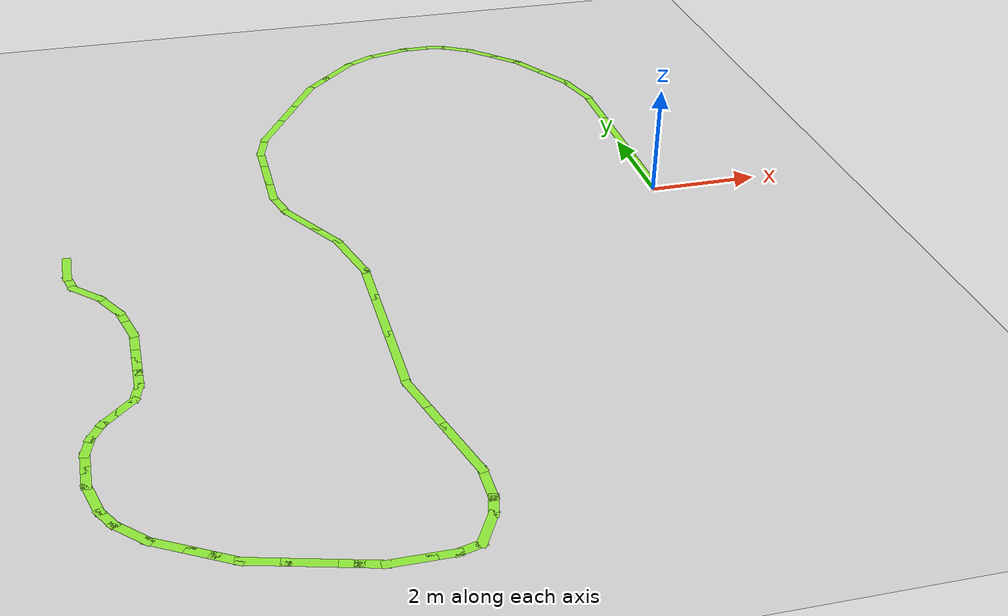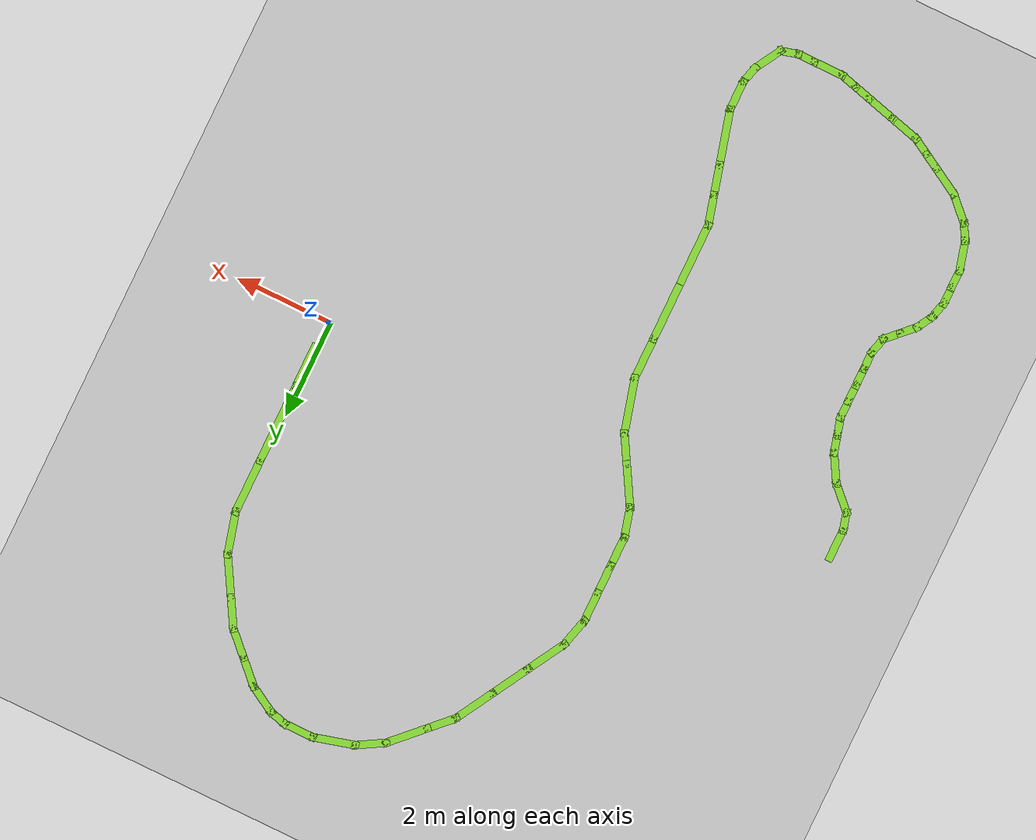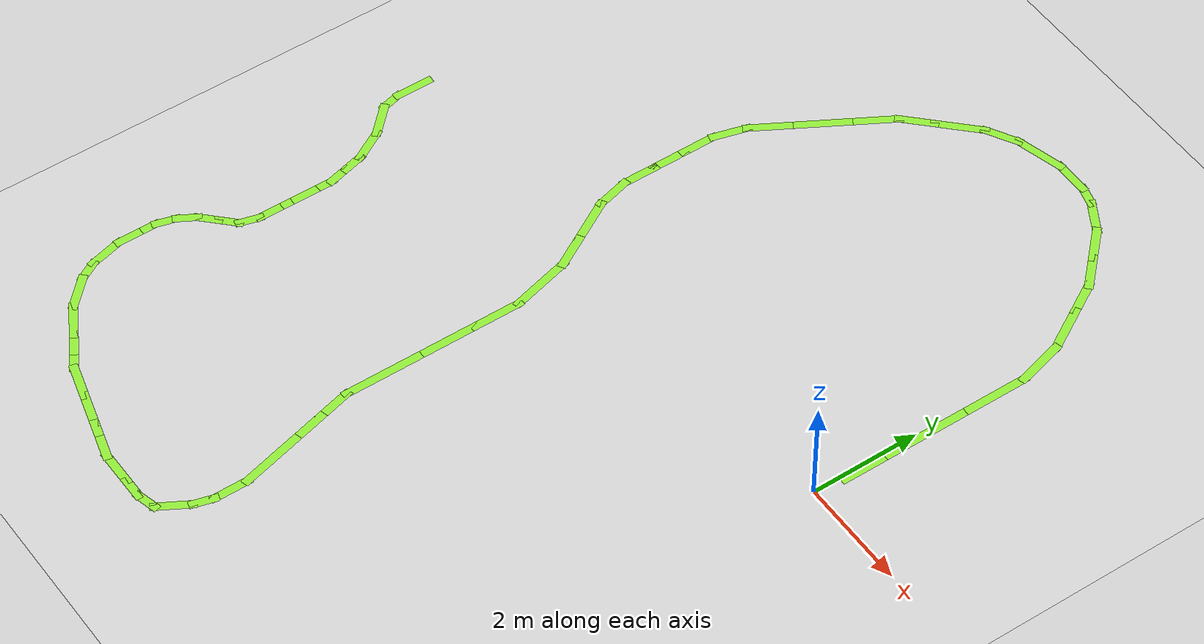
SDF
<sdf version="1.6">
 <world name="default">
  <model name="ground_plane">
   <static>1</static>
   <link name="link">
    <collision name="collision">
     <geometry><plane><normal>0 0 1</normal><size>100 100</size></plane></geometry>
     <surface><friction><ode><mu>100</mu><mu2>50</mu2></ode></friction></surface>
    </collision>
    <visual name="visual">
     <cast_shadows>0</cast_shadows>
     <geometry><plane><normal>0 0 1</normal><size>100 100</size></plane></geometry>
     <material>
      <script><uri>file://media/materials/scripts/gazebo.material</uri><name>Gazebo/Grey</name></script>
     </material>
    </visual>
   </link>
  </model>
  <model name="path_diamond">
   <pose>-5.33739 -0.627915 0 0 -0 0</pose>
   <link name="Wall_11">
    <collision name="Wall_11_Collision"><geometry><box><size>0.75 0.15 0</size></box></geometry></collision>
    <visual name="Wall_11_Visual">
     <geometry><box><size>0.75 0.15 0</size></box></geometry>
     <material>
      <script><uri>file://media/materials/scripts/gazebo.material</uri><name>Gazebo/Grey</name></script>
      <ambient>0.541176 0.886275 0.203922 1</ambient>
     </material>
     <meta><layer>0</layer></meta>
    </visual>
    <pose>4.61819 6.55155 0 0 -0 2.0944</pose>
   </link>
   <link name="Wall_12">
    <collision name="Wall_12_Collision"><geometry><box><size>0.75 0.15 0</size></box></geometry></collision>
    <visual name="Wall_12_Visual">
     <geometry><box><size>0.75 0.15 0</size></box></geometry>
     <material>
      <script><uri>file://media/materials/scripts/gazebo.material</uri><name>Gazebo/Grey</name></script>
      <ambient>0.541176 0.886275 0.203922 1</ambient>
     </material>
     <meta><layer>0</layer></meta>
    </visual>
    <pose>4.25606 7.02349 0 0 -0 2.35619</pose>
   </link>
   <link name="Wall_17">
    <collision name="Wall_17_Collision"><geometry><box><size>0.75 0.15 0</size></box></geometry></collision>
    <visual name="Wall_17_Visual">
     <geometry><box><size>0.75 0.15 0</size></box></geometry>
     <material>
      <script><uri>file://media/materials/scripts/gazebo.material</uri><name>Gazebo/Grey</name></script>
      <ambient>0.541176 0.886275 0.203922 1</ambient>
     </material>
     <meta><layer>0</layer></meta>
    </visual>
    <pose>3.83179 7.44775 0 0 -0 2.35619</pose>
   </link>
   <link name="Wall_18">
    <collision name="Wall_18_Collision"><geometry><box><size>0.75 0.15 0</size></box></geometry></collision>
    <visual name="Wall_18_Visual">
     <geometry><box><size>0.75 0.15 0</size></box></geometry>
     <material>
      <script><uri>file://media/materials/scripts/gazebo.material</uri><name>Gazebo/Grey</name></script>
      <ambient>0.541176 0.886275 0.203922 1</ambient>
     </material>
     <meta><layer>0</layer></meta>
    </visual>
    <pose>3.35985 7.80988 0 0 -0 2.61799</pose>
   </link>
   <link name="Wall_19">
    <collision name="Wall_19_Collision"><geometry><box><size>0.5 0.15 0</size></box></geometry></collision>
    <visual name="Wall_19_Visual">
     <geometry><box><size>0.5 0.15 0</size></box></geometry>
     <material>
      <script><uri>file://media/materials/scripts/gazebo.material</uri><name>Gazebo/Grey</name></script>
      <ambient>0.541176 0.886275 0.203922 1</ambient>
     </material>
     <meta><layer>0</layer></meta>
    </visual>
    <pose>2.93101 8.00517 0 0 -0 2.87979</pose>
   </link>
   <link name="Wall_20">
    <collision name="Wall_20_Collision"><geometry><box><size>0.75 0.15 0</size></box></geometry></collision>
    <visual name="Wall_20_Visual">
     <geometry><box><size>0.75 0.15 0</size></box></geometry>
     <material>
      <script><uri>file://media/materials/scripts/gazebo.material</uri><name>Gazebo/Grey</name></script>
      <ambient>0.541176 0.886275 0.203922 1</ambient>
     </material>
     <meta><layer>0</layer></meta>
    </visual>
    <pose>2.46197 8.05047 0 0 -0 3.14159</pose>
   </link>
   <link name="Wall_21">
    <collision name="Wall_21_Collision"><geometry><box><size>1 0.15 0</size></box></geometry></collision>
    <visual name="Wall_21_Visual">
     <geometry><box><size>1 0.15 0</size></box></geometry>
     <material>
      <script><uri>file://media/materials/scripts/gazebo.material</uri><name>Gazebo/Grey</name></script>
      <ambient>0.541176 0.886275 0.203922 1</ambient>
     </material>
     <meta><layer>0</layer></meta>
    </visual>
    <pose>1.75145 7.94047 0 0 -0 -2.87979</pose>
   </link>
   <link name="Wall_22">
    <collision name="Wall_22_Collision"><geometry><box><size>0.75 0.15 0</size></box></geometry></collision>
    <visual name="Wall_22_Visual">
     <geometry><box><size>0.75 0.15 0</size></box></geometry>
     <material>
      <script><uri>file://media/materials/scripts/gazebo.material</uri><name>Gazebo/Grey</name></script>
      <ambient>0.541176 0.886275 0.203922 1</ambient>
     </material>
     <meta><layer>0</layer></meta>
    </visual>
    <pose>1.08113 7.68047 0 0 -0 -2.61799</pose>
   </link>
   <link name="Wall_25">
    <collision name="Wall_25_Collision"><geometry><box><size>1 0.15 0</size></box></geometry></collision>
    <visual name="Wall_25_Visual">
     <geometry><box><size>1 0.15 0</size></box></geometry>
     <material>
      <script><uri>file://media/materials/scripts/gazebo.material</uri><name>Gazebo/Grey</name></script>
      <ambient>0.541176 0.886275 0.203922 1</ambient>
     </material>
     <meta><layer>0</layer></meta>
    </visual>
    <pose>0.520799 7.22995 0 0 -0 -2.35619</pose>
   </link>
   <link name="Wall_26">
    <collision name="Wall_26_Collision"><geometry><box><size>0.75 0.15 0</size></box></geometry></collision>
    <visual name="Wall_26_Visual">
     <geometry><box><size>0.75 0.15 0</size></box></geometry>
     <material>
      <script><uri>file://media/materials/scripts/gazebo.material</uri><name>Gazebo/Grey</name></script>
      <ambient>0.541176 0.886275 0.203922 1</ambient>
     </material>
     <meta><layer>0</layer></meta>
    </visual>
    <pose>0.008146 6.7173 0 0 -0 -2.35619</pose>
   </link>
   <link name="Wall_27">
    <collision name="Wall_27_Collision"><geometry><box><size>1 0.15 0</size></box></geometry></collision>
    <visual name="Wall_27_Visual">
     <geometry><box><size>1 0.15 0</size></box></geometry>
     <material>
      <script><uri>file://media/materials/scripts/gazebo.material</uri><name>Gazebo/Grey</name></script>
      <ambient>0.541176 0.886275 0.203922 1</ambient>
     </material>
     <meta><layer>0</layer></meta>
    </visual>
    <pose>-0.416486 6.13711 0 0 -0 -2.0944</pose>
   </link>
   <link name="Wall_28">
    <collision name="Wall_28_Collision"><geometry><box><size>1 0.15 0</size></box></geometry></collision>
    <visual name="Wall_28_Visual">
     <geometry><box><size>1 0.15 0</size></box></geometry>
     <material>
      <script><uri>file://media/materials/scripts/gazebo.material</uri><name>Gazebo/Grey</name></script>
      <ambient>0.541176 0.886275 0.203922 1</ambient>
     </material>
     <meta><layer>0</layer></meta>
    </visual>
    <pose>-0.841486 5.40099 0 0 -0 -2.0944</pose>
   </link>
   <link name="Wall_29">
    <collision name="Wall_29_Collision"><geometry><box><size>1 0.15 0</size></box></geometry></collision>
    <visual name="Wall_29_Visual">
     <geometry><box><size>1 0.15 0</size></box></geometry>
     <material>
      <script><uri>file://media/materials/scripts/gazebo.material</uri><name>Gazebo/Grey</name></script>
      <ambient>0.541176 0.886275 0.203922 1</ambient>
     </material>
     <meta><layer>0</layer></meta>
    </visual>
    <pose>-1.26649 4.66486 0 0 -0 -2.0944</pose>
   </link>
   <link name="Wall_30">
    <collision name="Wall_30_Collision"><geometry><box><size>0.75 0.15 0</size></box></geometry></collision>
    <visual name="Wall_30_Visual">
     <geometry><box><size>0.75 0.15 0</size></box></geometry>
     <material>
      <script><uri>file://media/materials/scripts/gazebo.material</uri><name>Gazebo/Grey</name></script>
      <ambient>0.541176 0.886275 0.203922 1</ambient>
     </material>
     <meta><layer>0</layer></meta>
    </visual>
    <pose>-1.55663 4.00702 0 0 -0 -1.8326</pose>
   </link>
   <link name="Wall_31">
    <collision name="Wall_31_Collision"><geometry><box><size>0.75 0.15 0</size></box></geometry></collision>
    <visual name="Wall_31_Visual">
     <geometry><box><size>0.75 0.15 0</size></box></geometry>
     <material>
      <script><uri>file://media/materials/scripts/gazebo.material</uri><name>Gazebo/Grey</name></script>
      <ambient>0.541176 0.886275 0.203922 1</ambient>
     </material>
     <meta><layer>0</layer></meta>
    </visual>
    <pose>-1.63428 3.41725 0 0 -0 -1.5708</pose>
   </link>
   <link name="Wall_32">
    <collision name="Wall_32_Collision"><geometry><box><size>0.75 0.15 0</size></box></geometry></collision>
    <visual name="Wall_32_Visual">
     <geometry><box><size>0.75 0.15 0</size></box></geometry>
     <material>
      <script><uri>file://media/materials/scripts/gazebo.material</uri><name>Gazebo/Grey</name></script>
      <ambient>0.541176 0.886275 0.203922 1</ambient>
     </material>
     <meta><layer>0</layer></meta>
    </visual>
    <pose>-1.63428 2.81725 0 0 -0 -1.5708</pose>
   </link>
   <link name="Wall_33">
    <collision name="Wall_33_Collision"><geometry><box><size>0.75 0.15 0</size></box></geometry></collision>
    <visual name="Wall_33_Visual">
     <geometry><box><size>0.75 0.15 0</size></box></geometry>
     <material>
      <script><uri>file://media/materials/scripts/gazebo.material</uri><name>Gazebo/Grey</name></script>
      <ambient>0.541176 0.886275 0.203922 1</ambient>
     </material>
     <meta><layer>0</layer></meta>
    </visual>
    <pose>-1.63428 2.21725 0 0 -0 -1.5708</pose>
   </link>
   <link name="Wall_34">
    <collision name="Wall_34_Collision"><geometry><box><size>0.75 0.15 0</size></box></geometry></collision>
    <visual name="Wall_34_Visual">
     <geometry><box><size>0.75 0.15 0</size></box></geometry>
     <material>
      <script><uri>file://media/materials/scripts/gazebo.material</uri><name>Gazebo/Grey</name></script>
      <ambient>0.541176 0.886275 0.203922 1</ambient>
     </material>
     <meta><layer>0</layer></meta>
    </visual>
    <pose>-1.55663 1.62747 0 0 -0 -1.309</pose>
   </link>
   <link name="Wall_35">
    <collision name="Wall_35_Collision"><geometry><box><size>1 0.15 0</size></box></geometry></collision>
    <visual name="Wall_35_Visual">
     <geometry><box><size>1 0.15 0</size></box></geometry>
     <material>
      <script><uri>file://media/materials/scripts/gazebo.material</uri><name>Gazebo/Grey</name></script>
      <ambient>0.541176 0.886275 0.203922 1</ambient>
     </material>
     <meta><layer>0</layer></meta>
    </visual>
    <pose>-1.26649 0.969631 0 0 -0 -1.0472</pose>
   </link>
   <link name="Wall_36">
    <collision name="Wall_36_Collision"><geometry><box><size>0.75 0.15 0</size></box></geometry></collision>
    <visual name="Wall_36_Visual">
     <geometry><box><size>0.75 0.15 0</size></box></geometry>
     <material>
      <script><uri>file://media/materials/scripts/gazebo.material</uri><name>Gazebo/Grey</name></script>
      <ambient>0.541176 0.886275 0.203922 1</ambient>
     </material>
     <meta><layer>0</layer></meta>
    </visual>
    <pose>-0.903986 0.341763 0 0 -0 -1.0472</pose>
   </link>
   <link name="Wall_37">
    <collision name="Wall_37_Collision"><geometry><box><size>1.25 0.15 0</size></box></geometry></collision>
    <visual name="Wall_37_Visual">
     <geometry><box><size>1.25 0.15 0</size></box></geometry>
     <material>
      <script><uri>file://media/materials/scripts/gazebo.material</uri><name>Gazebo/Grey</name></script>
      <ambient>0.541176 0.886275 0.203922 1</ambient>
     </material>
     <meta><layer>0</layer></meta>
    </visual>
    <pose>-0.611636 -0.449304 0 0 -0 -1.309</pose>
   </link>
   <link name="Wall_38">
    <collision name="Wall_38_Collision"><geometry><box><size>1 0.15 0</size></box></geometry></collision>
    <visual name="Wall_38_Visual">
     <geometry><box><size>1 0.15 0</size></box></geometry>
     <material>
      <script><uri>file://media/materials/scripts/gazebo.material</uri><name>Gazebo/Grey</name></script>
      <ambient>0.541176 0.886275 0.203922 1</ambient>
     </material>
     <meta><layer>0</layer></meta>
    </visual>
    <pose>-0.469285 -1.40556 0 0 -0 -1.5708</pose>
   </link>
   <link name="Wall_39">
    <collision name="Wall_39_Collision"><geometry><box><size>1.25 0.15 0</size></box></geometry></collision>
    <visual name="Wall_39_Visual">
     <geometry><box><size>1.25 0.15 0</size></box></geometry>
     <material>
      <script><uri>file://media/materials/scripts/gazebo.material</uri><name>Gazebo/Grey</name></script>
      <ambient>0.541176 0.886275 0.203922 1</ambient>
     </material>
     <meta><layer>0</layer></meta>
    </visual>
    <pose>-0.469285 -2.38056 0 0 -0 -1.5708</pose>
   </link>
   <link name="Wall_4">
    <collision name="Wall_4_Collision"><geometry><box><size>1 0.15 0</size></box></geometry></collision>
    <visual name="Wall_4_Visual">
     <geometry><box><size>1 0.15 0</size></box></geometry>
     <material>
      <script><uri>file://media/materials/scripts/gazebo.material</uri><name>Gazebo/Grey</name></script>
      <ambient>0.541176 0.886275 0.203922 1</ambient>
     </material>
     <meta><layer>0</layer></meta>
    </visual>
    <pose>5.41319 1.60958 0 0 -0 1.5708</pose>
   </link>
   <link name="Wall_40">
    <collision name="Wall_40_Collision"><geometry><box><size>1.5 0.15 0</size></box></geometry></collision>
    <visual name="Wall_40_Visual">
     <geometry><box><size>1.5 0.15 0</size></box></geometry>
     <material>
      <script><uri>file://media/materials/scripts/gazebo.material</uri><name>Gazebo/Grey</name></script>
      <ambient>0.541176 0.886275 0.203922 1</ambient>
     </material>
     <meta><layer>0</layer></meta>
    </visual>
    <pose>-0.469285 -3.60556 0 0 -0 -1.5708</pose>
   </link>
   <link name="Wall_41">
    <collision name="Wall_41_Collision"><geometry><box><size>0.75 0.15 0</size></box></geometry></collision>
    <visual name="Wall_41_Visual">
     <geometry><box><size>0.75 0.15 0</size></box></geometry>
     <material>
      <script><uri>file://media/materials/scripts/gazebo.material</uri><name>Gazebo/Grey</name></script>
      <ambient>0.541176 0.886275 0.203922 1</ambient>
     </material>
     <meta><layer>0</layer></meta>
    </visual>
    <pose>-0.391639 -4.57034 0 0 -0 -1.309</pose>
   </link>
   <link name="Wall_42">
    <collision name="Wall_42_Collision"><geometry><box><size>0.75 0.15 0</size></box></geometry></collision>
    <visual name="Wall_42_Visual">
     <geometry><box><size>0.75 0.15 0</size></box></geometry>
     <material>
      <script><uri>file://media/materials/scripts/gazebo.material</uri><name>Gazebo/Grey</name></script>
      <ambient>0.541176 0.886275 0.203922 1</ambient>
     </material>
     <meta><layer>0</layer></meta>
    </visual>
    <pose>-0.236348 -5.1499 0 0 -0 -1.309</pose>
   </link>
   <link name="Wall_43">
    <collision name="Wall_43_Collision"><geometry><box><size>1.25 0.15 0</size></box></geometry></collision>
    <visual name="Wall_43_Visual">
     <geometry><box><size>1.25 0.15 0</size></box></geometry>
     <material>
      <script><uri>file://media/materials/scripts/gazebo.material</uri><name>Gazebo/Grey</name></script>
      <ambient>0.541176 0.886275 0.203922 1</ambient>
     </material>
     <meta><layer>0</layer></meta>
    </visual>
    <pose>-0.016352 -5.97093 0 0 -0 -1.309</pose>
   </link>
   <link name="Wall_44">
    <collision name="Wall_44_Collision"><geometry><box><size>0.75 0.15 0</size></box></geometry></collision>
    <visual name="Wall_44_Visual">
     <geometry><box><size>0.75 0.15 0</size></box></geometry>
     <material>
      <script><uri>file://media/materials/scripts/gazebo.material</uri><name>Gazebo/Grey</name></script>
      <ambient>0.541176 0.886275 0.203922 1</ambient>
     </material>
     <meta><layer>0</layer></meta>
    </visual>
    <pose>0.125999 -6.80219 0 0 -0 -1.5708</pose>
   </link>
   <link name="Wall_45">
    <collision name="Wall_45_Collision"><geometry><box><size>0.5 0.15 0</size></box></geometry></collision>
    <visual name="Wall_45_Visual">
     <geometry><box><size>0.5 0.15 0</size></box></geometry>
     <material>
      <script><uri>file://media/materials/scripts/gazebo.material</uri><name>Gazebo/Grey</name></script>
      <ambient>0.541176 0.886275 0.203922 1</ambient>
     </material>
     <meta><layer>0</layer></meta>
    </visual>
    <pose>0.080706 -7.27123 0 0 -0 -1.8326</pose>
   </link>
   <link name="Wall_46">
    <collision name="Wall_46_Collision"><geometry><box><size>0.75 0.15 0</size></box></geometry></collision>
    <visual name="Wall_46_Visual">
     <geometry><box><size>0.75 0.15 0</size></box></geometry>
     <material>
      <script><uri>file://media/materials/scripts/gazebo.material</uri><name>Gazebo/Grey</name></script>
      <ambient>0.541176 0.886275 0.203922 1</ambient>
     </material>
     <meta><layer>0</layer></meta>
    </visual>
    <pose>-0.114588 -7.70007 0 0 -0 -2.0944</pose>
   </link>
   <link name="Wall_47">
    <collision name="Wall_47_Collision"><geometry><box><size>0.5 0.15 0</size></box></geometry></collision>
    <visual name="Wall_47_Visual">
     <geometry><box><size>0.5 0.15 0</size></box></geometry>
     <material>
      <script><uri>file://media/materials/scripts/gazebo.material</uri><name>Gazebo/Grey</name></script>
      <ambient>0.541176 0.886275 0.203922 1</ambient>
     </material>
     <meta><layer>0</layer></meta>
    </visual>
    <pose>-0.433625 -8.00518 0 0 -0 -2.87979</pose>
   </link>
   <link name="Wall_48">
    <collision name="Wall_48_Collision"><geometry><box><size>0.5 0.15 0</size></box></geometry></collision>
    <visual name="Wall_48_Visual">
     <geometry><box><size>0.5 0.15 0</size></box></geometry>
     <material>
      <script><uri>file://media/materials/scripts/gazebo.material</uri><name>Gazebo/Grey</name></script>
      <ambient>0.541176 0.886275 0.203922 1</ambient>
     </material>
     <meta><layer>0</layer></meta>
    </visual>
    <pose>-0.777662 -8.05047 0 0 -0 3.14159</pose>
   </link>
   <link name="Wall_49">
    <collision name="Wall_49_Collision"><geometry><box><size>0.75 0.15 0</size></box></geometry></collision>
    <visual name="Wall_49_Visual">
     <geometry><box><size>0.75 0.15 0</size></box></geometry>
     <material>
      <script><uri>file://media/materials/scripts/gazebo.material</uri><name>Gazebo/Grey</name></script>
      <ambient>0.541176 0.886275 0.203922 1</ambient>
     </material>
     <meta><layer>0</layer></meta>
    </visual>
    <pose>-1.25266 -8.05047 0 0 -0 3.14159</pose>
   </link>
   <link name="Wall_5">
    <collision name="Wall_5_Collision"><geometry><box><size>1.75 0.15 0</size></box></geometry></collision>
    <visual name="Wall_5_Visual">
     <geometry><box><size>1.75 0.15 0</size></box></geometry>
     <material>
      <script><uri>file://media/materials/scripts/gazebo.material</uri><name>Gazebo/Grey</name></script>
      <ambient>0.541176 0.886275 0.203922 1</ambient>
     </material>
     <meta><layer>0</layer></meta>
    </visual>
    <pose>5.41319 2.83458 0 0 -0 1.5708</pose>
   </link>
   <link name="Wall_50">
    <collision name="Wall_50_Collision"><geometry><box><size>0.5 0.15 0</size></box></geometry></collision>
    <visual name="Wall_50_Visual">
     <geometry><box><size>0.5 0.15 0</size></box></geometry>
     <material>
      <script><uri>file://media/materials/scripts/gazebo.material</uri><name>Gazebo/Grey</name></script>
      <ambient>0.541176 0.886275 0.203922 1</ambient>
     </material>
     <meta><layer>0</layer></meta>
    </visual>
    <pose>-1.7217 -8.00518 0 0 -0 2.87979</pose>
   </link>
   <link name="Wall_51">
    <collision name="Wall_51_Collision"><geometry><box><size>0.5 0.15 0</size></box></geometry></collision>
    <visual name="Wall_51_Visual">
     <geometry><box><size>0.5 0.15 0</size></box></geometry>
     <material>
      <script><uri>file://media/materials/scripts/gazebo.material</uri><name>Gazebo/Grey</name></script>
      <ambient>0.541176 0.886275 0.203922 1</ambient>
     </material>
     <meta><layer>0</layer></meta>
    </visual>
    <pose>-2.05977 -7.91459 0 0 -0 2.87979</pose>
   </link>
   <link name="Wall_52">
    <collision name="Wall_52_Collision"><geometry><box><size>0.75 0.15 0</size></box></geometry></collision>
    <visual name="Wall_52_Visual">
     <geometry><box><size>0.75 0.15 0</size></box></geometry>
     <material>
      <script><uri>file://media/materials/scripts/gazebo.material</uri><name>Gazebo/Grey</name></script>
      <ambient>0.541176 0.886275 0.203922 1</ambient>
     </material>
     <meta><layer>0</layer></meta>
    </visual>
    <pose>-2.51859 -7.79165 0 0 -0 2.87979</pose>
   </link>
   <link name="Wall_53">
    <collision name="Wall_53_Collision"><geometry><box><size>0.75 0.15 0</size></box></geometry></collision>
    <visual name="Wall_53_Visual">
     <geometry><box><size>0.75 0.15 0</size></box></geometry>
     <material>
      <script><uri>file://media/materials/scripts/gazebo.material</uri><name>Gazebo/Grey</name></script>
      <ambient>0.541176 0.886275 0.203922 1</ambient>
     </material>
     <meta><layer>0</layer></meta>
    </visual>
    <pose>-3.09814 -7.63636 0 0 -0 2.87979</pose>
   </link>
   <link name="Wall_54">
    <collision name="Wall_54_Collision"><geometry><box><size>0.5 0.15 0</size></box></geometry></collision>
    <visual name="Wall_54_Visual">
     <geometry><box><size>0.5 0.15 0</size></box></geometry>
     <material>
      <script><uri>file://media/materials/scripts/gazebo.material</uri><name>Gazebo/Grey</name></script>
      <ambient>0.541176 0.886275 0.203922 1</ambient>
     </material>
     <meta><layer>0</layer></meta>
    </visual>
    <pose>-3.53947 -7.47121 0 0 -0 2.61799</pose>
   </link>
   <link name="Wall_55">
    <collision name="Wall_55_Collision"><geometry><box><size>0.5 0.15 0</size></box></geometry></collision>
    <visual name="Wall_55_Visual">
     <geometry><box><size>0.5 0.15 0</size></box></geometry>
     <material>
      <script><uri>file://media/materials/scripts/gazebo.material</uri><name>Gazebo/Grey</name></script>
      <ambient>0.541176 0.886275 0.203922 1</ambient>
     </material>
     <meta><layer>0</layer></meta>
    </visual>
    <pose>-3.84258 -7.29621 0 0 -0 2.61799</pose>
   </link>
   <link name="Wall_58">
    <collision name="Wall_58_Collision"><geometry><box><size>0.75 0.15 0</size></box></geometry></collision>
    <visual name="Wall_58_Visual">
     <geometry><box><size>0.75 0.15 0</size></box></geometry>
     <material>
      <script><uri>file://media/materials/scripts/gazebo.material</uri><name>Gazebo/Grey</name></script>
      <ambient>0.541176 0.886275 0.203922 1</ambient>
     </material>
     <meta><layer>0</layer></meta>
    </visual>
    <pose>-4.25395 -7.05871 0 0 -0 2.61799</pose>
   </link>
   <link name="Wall_59">
    <collision name="Wall_59_Collision"><geometry><box><size>0.75 0.15 0</size></box></geometry></collision>
    <visual name="Wall_59_Visual">
     <geometry><box><size>0.75 0.15 0</size></box></geometry>
     <material>
      <script><uri>file://media/materials/scripts/gazebo.material</uri><name>Gazebo/Grey</name></script>
      <ambient>0.541176 0.886275 0.203922 1</ambient>
     </material>
     <meta><layer>0</layer></meta>
    </visual>
    <pose>-4.72589 -6.69658 0 0 -0 2.35619</pose>
   </link>
   <link name="Wall_6">
    <collision name="Wall_6_Collision"><geometry><box><size>1.25 0.15 0</size></box></geometry></collision>
    <visual name="Wall_6_Visual">
     <geometry><box><size>1.25 0.15 0</size></box></geometry>
     <material>
      <script><uri>file://media/materials/scripts/gazebo.material</uri><name>Gazebo/Grey</name></script>
      <ambient>0.541176 0.886275 0.203922 1</ambient>
     </material>
     <meta><layer>0</layer></meta>
    </visual>
    <pose>5.41319 4.18458 0 0 -0 1.5708</pose>
   </link>
   <link name="Wall_60">
    <collision name="Wall_60_Collision"><geometry><box><size>0.5 0.15 0</size></box></geometry></collision>
    <visual name="Wall_60_Visual">
     <geometry><box><size>0.5 0.15 0</size></box></geometry>
     <material>
      <script><uri>file://media/materials/scripts/gazebo.material</uri><name>Gazebo/Grey</name></script>
      <ambient>0.541176 0.886275 0.203922 1</ambient>
     </material>
     <meta><layer>0</layer></meta>
    </visual>
    <pose>-5.02552 -6.33289 0 0 -0 2.0944</pose>
   </link>
   <link name="Wall_61">
    <collision name="Wall_61_Collision"><geometry><box><size>0.75 0.15 0</size></box></geometry></collision>
    <visual name="Wall_61_Visual">
     <geometry><box><size>0.75 0.15 0</size></box></geometry>
     <material>
      <script><uri>file://media/materials/scripts/gazebo.material</uri><name>Gazebo/Grey</name></script>
      <ambient>0.541176 0.886275 0.203922 1</ambient>
     </material>
     <meta><layer>0</layer></meta>
    </visual>
    <pose>-5.19066 -5.89156 0 0 -0 1.8326</pose>
   </link>
   <link name="Wall_62">
    <collision name="Wall_62_Collision"><geometry><box><size>0.5 0.15 0</size></box></geometry></collision>
    <visual name="Wall_62_Visual">
     <geometry><box><size>0.5 0.15 0</size></box></geometry>
     <material>
      <script><uri>file://media/materials/scripts/gazebo.material</uri><name>Gazebo/Grey</name></script>
      <ambient>0.541176 0.886275 0.203922 1</ambient>
     </material>
     <meta><layer>0</layer></meta>
    </visual>
    <pose>-5.26831 -5.42678 0 0 -0 1.5708</pose>
   </link>
   <link name="Wall_63">
    <collision name="Wall_63_Collision"><geometry><box><size>0.5 0.15 0</size></box></geometry></collision>
    <visual name="Wall_63_Visual">
     <geometry><box><size>0.5 0.15 0</size></box></geometry>
     <material>
      <script><uri>file://media/materials/scripts/gazebo.material</uri><name>Gazebo/Grey</name></script>
      <ambient>0.541176 0.886275 0.203922 1</ambient>
     </material>
     <meta><layer>0</layer></meta>
    </visual>
    <pose>-5.26831 -5.07678 0 0 -0 1.5708</pose>
   </link>
   <link name="Wall_7">
    <collision name="Wall_7_Collision"><geometry><box><size>1 0.15 0</size></box></geometry></collision>
    <visual name="Wall_7_Visual">
     <geometry><box><size>1 0.15 0</size></box></geometry>
     <material>
      <script><uri>file://media/materials/scripts/gazebo.material</uri><name>Gazebo/Grey</name></script>
      <ambient>0.541176 0.886275 0.203922 1</ambient>
     </material>
     <meta><layer>0</layer></meta>
    </visual>
    <pose>5.30319 5.1451 0 0 -0 1.8326</pose>
   </link>
   <link name="Wall_72">
    <collision name="Wall_72_Collision"><geometry><box><size>0.5 0.15 0</size></box></geometry></collision>
    <visual name="Wall_72_Visual">
     <geometry><box><size>0.5 0.15 0</size></box></geometry>
     <material>
      <script><uri>file://media/materials/scripts/gazebo.material</uri><name>Gazebo/Grey</name></script>
      <ambient>0.541176 0.886275 0.203922 1</ambient>
     </material>
     <meta><layer>0</layer></meta>
    </visual>
    <pose>-5.22302 -4.73275 0 0 -0 1.309</pose>
   </link>
   <link name="Wall_73">
    <collision name="Wall_73_Collision"><geometry><box><size>0.5 0.15 0</size></box></geometry></collision>
    <visual name="Wall_73_Visual">
     <geometry><box><size>0.5 0.15 0</size></box></geometry>
     <material>
      <script><uri>file://media/materials/scripts/gazebo.material</uri><name>Gazebo/Grey</name></script>
      <ambient>0.541176 0.886275 0.203922 1</ambient>
     </material>
     <meta><layer>0</layer></meta>
    </visual>
    <pose>-5.09022 -4.41216 0 0 -0 1.0472</pose>
   </link>
   <link name="Wall_74">
    <collision name="Wall_74_Collision"><geometry><box><size>0.5 0.15 0</size></box></geometry></collision>
    <visual name="Wall_74_Visual">
     <geometry><box><size>0.5 0.15 0</size></box></geometry>
     <material>
      <script><uri>file://media/materials/scripts/gazebo.material</uri><name>Gazebo/Grey</name></script>
      <ambient>0.541176 0.886275 0.203922 1</ambient>
     </material>
     <meta><layer>0</layer></meta>
    </visual>
    <pose>-4.87898 -4.13686 0 0 -0 0.785398</pose>
   </link>
   <link name="Wall_75">
    <collision name="Wall_75_Collision"><geometry><box><size>0.5 0.15 0</size></box></geometry></collision>
    <visual name="Wall_75_Visual">
     <geometry><box><size>0.5 0.15 0</size></box></geometry>
     <material>
      <script><uri>file://media/materials/scripts/gazebo.material</uri><name>Gazebo/Grey</name></script>
      <ambient>0.541176 0.886275 0.203922 1</ambient>
     </material>
     <meta><layer>0</layer></meta>
    </visual>
    <pose>-4.63149 -3.88937 0 0 -0 0.785398</pose>
   </link>
   <link name="Wall_76">
    <collision name="Wall_76_Collision"><geometry><box><size>0.5 0.15 0</size></box></geometry></collision>
    <visual name="Wall_76_Visual">
     <geometry><box><size>0.5 0.15 0</size></box></geometry>
     <material>
      <script><uri>file://media/materials/scripts/gazebo.material</uri><name>Gazebo/Grey</name></script>
      <ambient>0.541176 0.886275 0.203922 1</ambient>
     </material>
     <meta><layer>0</layer></meta>
    </visual>
    <pose>-4.46245 -3.59659 0 0 -0 1.309</pose>
   </link>
   <link name="Wall_77">
    <collision name="Wall_77_Collision"><geometry><box><size>0.5 0.15 0</size></box></geometry></collision>
    <visual name="Wall_77_Visual">
     <geometry><box><size>0.5 0.15 0</size></box></geometry>
     <material>
      <script><uri>file://media/materials/scripts/gazebo.material</uri><name>Gazebo/Grey</name></script>
      <ambient>0.541176 0.886275 0.203922 1</ambient>
     </material>
     <meta><layer>0</layer></meta>
    </visual>
    <pose>-4.41716 -3.25255 0 0 -0 1.5708</pose>
   </link>
   <link name="Wall_78">
    <collision name="Wall_78_Collision"><geometry><box><size>0.5 0.15 0</size></box></geometry></collision>
    <visual name="Wall_78_Visual">
     <geometry><box><size>0.5 0.15 0</size></box></geometry>
     <material>
      <script><uri>file://media/materials/scripts/gazebo.material</uri><name>Gazebo/Grey</name></script>
      <ambient>0.541176 0.886275 0.203922 1</ambient>
     </material>
     <meta><layer>0</layer></meta>
    </visual>
    <pose>-4.41716 -2.90255 0 0 -0 1.5708</pose>
   </link>
   <link name="Wall_79">
    <collision name="Wall_79_Collision"><geometry><box><size>0.5 0.15 0</size></box></geometry></collision>
    <visual name="Wall_79_Visual">
     <geometry><box><size>0.5 0.15 0</size></box></geometry>
     <material>
      <script><uri>file://media/materials/scripts/gazebo.material</uri><name>Gazebo/Grey</name></script>
      <ambient>0.541176 0.886275 0.203922 1</ambient>
     </material>
     <meta><layer>0</layer></meta>
    </visual>
    <pose>-4.41716 -2.55255 0 0 -0 1.5708</pose>
   </link>
   <link name="Wall_8">
    <collision name="Wall_8_Collision"><geometry><box><size>1 0.15 0</size></box></geometry></collision>
    <visual name="Wall_8_Visual">
     <geometry><box><size>1 0.15 0</size></box></geometry>
     <material>
      <script><uri>file://media/materials/scripts/gazebo.material</uri><name>Gazebo/Grey</name></script>
      <ambient>0.541176 0.886275 0.203922 1</ambient>
     </material>
     <meta><layer>0</layer></meta>
    </visual>
    <pose>4.98069 5.92368 0 0 -0 2.0944</pose>
   </link>
   <link name="Wall_80">
    <collision name="Wall_80_Collision"><geometry><box><size>0.5 0.15 0</size></box></geometry></collision>
    <visual name="Wall_80_Visual">
     <geometry><box><size>0.5 0.15 0</size></box></geometry>
     <material>
      <script><uri>file://media/materials/scripts/gazebo.material</uri><name>Gazebo/Grey</name></script>
      <ambient>0.541176 0.886275 0.203922 1</ambient>
     </material>
     <meta><layer>0</layer></meta>
    </visual>
    <pose>-4.41716 -2.20255 0 0 -0 1.5708</pose>
   </link>
   <link name="Wall_81">
    <collision name="Wall_81_Collision"><geometry><box><size>0.5 0.15 0</size></box></geometry></collision>
    <visual name="Wall_81_Visual">
     <geometry><box><size>0.5 0.15 0</size></box></geometry>
     <material>
      <script><uri>file://media/materials/scripts/gazebo.material</uri><name>Gazebo/Grey</name></script>
      <ambient>0.541176 0.886275 0.203922 1</ambient>
     </material>
     <meta><layer>0</layer></meta>
    </visual>
    <pose>-4.46245 -1.85852 0 0 -0 1.8326</pose>
   </link>
   <link name="Wall_82">
    <collision name="Wall_82_Collision"><geometry><box><size>0.5 0.15 0</size></box></geometry></collision>
    <visual name="Wall_82_Visual">
     <geometry><box><size>0.5 0.15 0</size></box></geometry>
     <material>
      <script><uri>file://media/materials/scripts/gazebo.material</uri><name>Gazebo/Grey</name></script>
      <ambient>0.541176 0.886275 0.203922 1</ambient>
     </material>
     <meta><layer>0</layer></meta>
    </visual>
    <pose>-4.55304 -1.52044 0 0 -0 1.8326</pose>
   </link>
   <link name="Wall_83">
    <collision name="Wall_83_Collision"><geometry><box><size>0.75 0.15 0</size></box></geometry></collision>
    <visual name="Wall_83_Visual">
     <geometry><box><size>0.75 0.15 0</size></box></geometry>
     <material>
      <script><uri>file://media/materials/scripts/gazebo.material</uri><name>Gazebo/Grey</name></script>
      <ambient>0.541176 0.886275 0.203922 1</ambient>
     </material>
     <meta><layer>0</layer></meta>
    </visual>
    <pose>-4.74833 -1.0916 0 0 -0 2.0944</pose>
   </link>
   <link name="Wall_84">
    <collision name="Wall_84_Collision"><geometry><box><size>0.75 0.15 0</size></box></geometry></collision>
    <visual name="Wall_84_Visual">
     <geometry><box><size>0.75 0.15 0</size></box></geometry>
     <material>
      <script><uri>file://media/materials/scripts/gazebo.material</uri><name>Gazebo/Grey</name></script>
      <ambient>0.541176 0.886275 0.203922 1</ambient>
     </material>
     <meta><layer>0</layer></meta>
    </visual>
    <pose>-5.11047 -0.619657 0 0 -0 2.35619</pose>
   </link>
   <link name="Wall_85">
    <collision name="Wall_85_Collision"><geometry><box><size>0.5 0.15 0</size></box></geometry></collision>
    <visual name="Wall_85_Visual">
     <geometry><box><size>0.5 0.15 0</size></box></geometry>
     <material>
      <script><uri>file://media/materials/scripts/gazebo.material</uri><name>Gazebo/Grey</name></script>
      <ambient>0.541176 0.886275 0.203922 1</ambient>
     </material>
     <meta><layer>0</layer></meta>
    </visual>
    <pose>-5.36789 -0.238488 0 0 -0 1.8326</pose>
   </link>
   <link name="Wall_86">
    <collision name="Wall_86_Collision"><geometry><box><size>0.75 0.15 0</size></box></geometry></collision>
    <visual name="Wall_86_Visual">
     <geometry><box><size>0.75 0.15 0</size></box></geometry>
     <material>
      <script><uri>file://media/materials/scripts/gazebo.material</uri><name>Gazebo/Grey</name></script>
      <ambient>0.541176 0.886275 0.203922 1</ambient>
     </material>
     <meta><layer>0</layer></meta>
    </visual>
    <pose>-5.41319 0.230549 0 0 -0 1.5708</pose>
   </link>
   <static>1</static>
  </model>
 </world>
</sdf>
